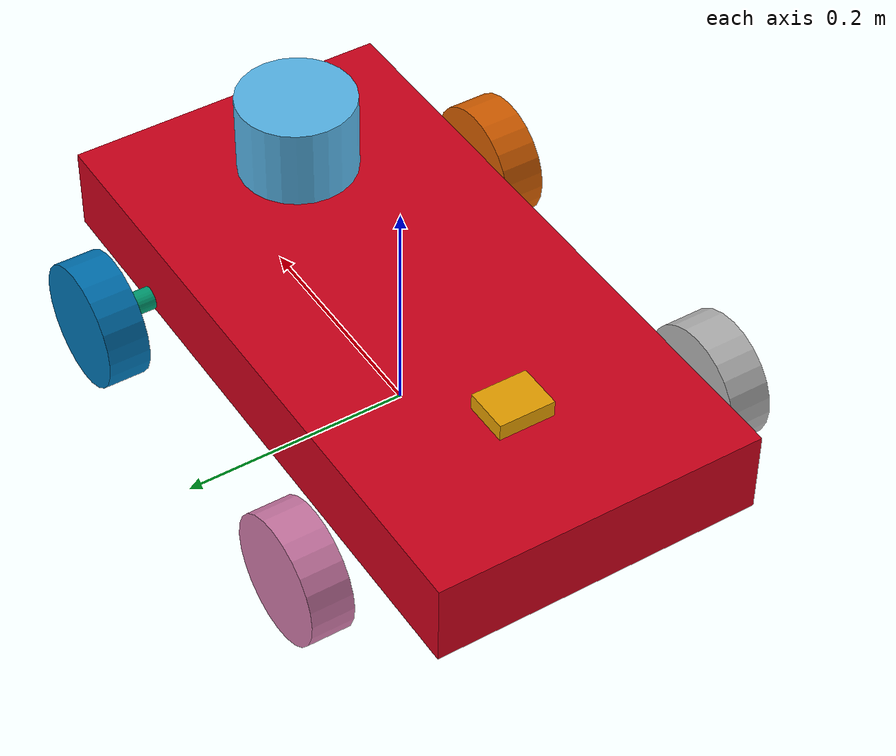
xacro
<?xml version="1.0"?>
<robot name="arc" xmlns:xacro="http://www.ros.org/wiki/xacro">

    <xacro:include filename="$(find ars_description)/urdf/materials.xacro" />
    <xacro:include filename="$(find ars_description)/urdf/properties.xacro"/>
    <xacro:include filename="$(find ars_description)/urdf/macros.xacro"/>
    <xacro:include filename="$(find ars_description)/urdf/parts/chassis.xacro"/>
    <xacro:include filename="$(find ars_description)/urdf/parts/hinge.xacro"/>
    <xacro:include filename="$(find ars_description)/urdf/parts/front_wheel.xacro"/>
    <xacro:include filename="$(find ars_description)/urdf/parts/rear_wheel.xacro"/>
    <xacro:include filename="$(find ars_description)/urdf/sensors/imu.xacro"/>
    <xacro:include filename="$(find ars_description)/urdf/sensors/lidar.xacro"/>
    <xacro:include filename="$(find ars_description)/urdf/ros2_control.xacro"/>

    <xacro:chassis/>

    <xacro:hinge prefix="LEFT"
        X = "${hingeX}"
        Y = "${chassisWidth/2+hingeLength/2}"/>

    <xacro:hinge prefix="RIGHT"
        X = "${hingeX}"
        Y = "${-chassisWidth/2-hingeLength/2}"/>

    <xacro:front_wheel prefix="LEFT"
        X="0"
        Y="${hingeLength/2+wheelWidth/2}"/>

    <xacro:front_wheel prefix="RIGHT"
        X="0"
        Y="${-hingeLength/2-wheelWidth/2}"/>

    <xacro:rear_wheel prefix="LEFT"
        X="${backWheelX}"
        Y="${chassisWidth/2+hingeLength+wheelWidth/2}"/>

    <xacro:rear_wheel prefix="RIGHT"
        X="${backWheelX}"
        Y="${-chassisWidth/2-hingeLength-wheelWidth/2}"/>

    <xacro:IMU base_link="${base_link_name}"/>

    <xacro:LIDAR base_link="${base_link_name}"/>

</robot>

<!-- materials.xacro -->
<robot xmlns:xacro="http://www.ros.org/wiki/xacro">

  <material name="black">
    <color rgba="0.0 0.0 0.0 1.0"/>
  </material>

  <material name="blue">
    <color rgba="0.203125 0.23828125 0.28515625 1.0"/>
  </material>

  <material name="green">
    <color rgba="0.0 0.8 0.0 1.0"/>
  </material>

  <material name="grey">
    <color rgba="0.2 0.2 0.2 1.0"/>
  </material>

  <material name="orange">
    <color rgba="1.0 0.423529411765 0.0392156862745 1.0"/>
  </material>

  <material name="brown">
    <color rgba="0.870588235294 0.811764705882 0.764705882353 1.0"/>
  </material>

  <material name="red">
    <color rgba="0.80078125 0.12890625 0.1328125 1.0"/>
  </material>

  <material name="white">
    <color rgba="1.0 1.0 1.0 1.0"/>
  </material>
</robot>

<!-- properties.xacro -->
<robot xmlns:xacro="http://www.ros.org/wiki/xacro">

    <xacro:property name="base_link_name" value="base_link"/>

    <xacro:property name="PI" value="3.1415926535897931"/>

    <xacro:property name="friction_coeff" value="0.8"/>
    <xacro:property name="transmission_reduction" value="1"/>

    <!-- Chassis properties -->
    <xacro:property name="chassisHeight" value="0.075"/>
    <xacro:property name="chassisLength" value="0.570"/>
    <xacro:property name="chassisWidth" value="0.290"/>
    <xacro:property name="chassisMass" value="2.300"/>

    <!-- Hinge properties -->
    <xacro:property name="hingeMass" value="0.030"/>
    <xacro:property name="hingeRadius" value="0.010"/>
    <xacro:property name="hingeLength" value="0.030"/>
    <xacro:property name="hingeX" value="0.162"/>

    <!-- Wheel properties -->
    <xacro:property name="wheelWidth" value="0.037"/>
    <xacro:property name="wheelRadius" value="0.055"/>
    <xacro:property name="backWheelX" value="-0.162"/>
    <xacro:property name="wheelClearance" value="0.01"/>
    <xacro:property name="wheelHeight" value="0.008"/>
    <xacro:property name="wheelMass" value="0.08"/>

    <!-- LIDAR properties -->
    <xacro:property name="lidar_origin_rpy"		value="0 0 0"/>
    <xacro:property name="lidar_origin_xyz"		value="${hingeX} 0 ${chassisHeight/2.0+0.05}"/>
    <xacro:property name="lidar_height"		value="0.0717"/>
    <xacro:property name="lidar_radius"		value="0.0516"/>
    <xacro:property name="lidar_mass"		value="0.15"/>
    <xacro:property name="lidar_update_rate"		value="20"/>
    <xacro:property name="lidar_topic" 			value="/scan"/>

    <!-- IMU properties -->
    <xacro:property name="imu_origin_rpy"		value="0 0 0"/>
    <xacro:property name="imu_origin_xyz"		value="${backWheelX} 0 ${chassisHeight/2.0+0.005}"/>
    <xacro:property name="imu_mass"		value="0.1"/>
    <xacro:property name="imu_x"		value="0.04"/>
    <xacro:property name="imu_y"		value="0.05"/>
    <xacro:property name="imu_z"		value="0.02"/>
    <xacro:property name="imu_size"		value="${imu_x} ${imu_y} ${imu_z}"/>
    <xacro:property name="imu_update_rate"		value="400"/>
    <xacro:property name="imu_topic" 			value="/imu"/>

</robot>

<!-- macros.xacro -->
<robot xmlns:xacro="http://www.ros.org/wiki/xacro">

    <xacro:macro name="cylinder_inertia" params="m r h">
        <inertia
            ixx="${m*(3*r*r+h*h)/12}"
            ixy="0"
            ixz="0"
            iyy="${m*(3*r*r+h*h)/12}"
            iyz="0"
            izz="${m*r*r/2}"
        />
    </xacro:macro>

    <xacro:macro name="box_inertia" params="m x y z">
        <inertia
            ixx="${m*(y*y+z*z)/12}"
            ixy="0"
            ixz="0"
            iyy="${m*(x*x+z*z)/12}"
            iyz="0"
            izz="${m*(x*x+z*z)/12}"
        />
    </xacro:macro>

    <xacro:macro name="sphere_inertia" params="m r">
        <inertia
            ixx="${2*m*r*r/5}"
            ixy="0"
            ixz="0"
            iyy="${2*m*r*r/5}"
            iyz="0"
            izz="${2*m*r*r/5}"
        />
    </xacro:macro>
</robot>

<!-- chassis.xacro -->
<robot xmlns:xacro="http://www.ros.org/wiki/xacro">

    <xacro:macro name="chassis">

        <link name="base_link"/>

        <link name="chassis">
            <collision>
                <origin xyz="0 0 0" rpy="0 0 0"/>
                <geometry>
                    <box size="${chassisLength} ${chassisWidth} ${chassisHeight}"/>
                </geometry>
            </collision>
            <visual>
                <origin xyz="0 0 0" rpy="0 0 0"/>
                <geometry>
                    <box size="${chassisLength} ${chassisWidth} ${chassisHeight}"/>
                </geometry>
                <material name="base_material">
                    <color rgba="0.8 0.0 0.1 1.0"/>
                </material>
            </visual>
            <inertial>
                <origin xyz="0 0 0" rpy="0 0 0"/>
                <mass value="${chassisMass}"/>
                <xacro:box_inertia
                    m="${chassisMass}"
                    x="${chassisLength}"
                    y="${chassisWidth}"
                    z="${chassisHeight}"
                />
            </inertial>
        </link>

        <!-- Fixed joint to add dummy inertia link -->
        <joint name="chassis_joinz" type="fixed">
            <parent link="base_link"/>
            <child link="chassis"/>
            <origin xyz="0 0 ${wheelRadius - wheelHeight + chassisHeight/2.0}" rpy="0 0 0"/>
        </joint>

    </xacro:macro>

</robot>

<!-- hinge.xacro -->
<robot xmlns:xacro="http://www.ros.org/wiki/xacro">

    <xacro:macro name="hinge" params="prefix X Y">
        <joint name="${prefix}_HINGE_JOINT" type="continuous">
            <parent link="chassis"/>
            <child link="${prefix}_HINGE"/>
            <origin xyz="${X} ${Y} ${wheelHeight - chassisHeight/2.0}" rpy="-${0.5*PI} 0.0 0.0"/>
            <axis xyz="0 -1 0" rpy="0 0 0"/>
        </joint>

        <link name="${prefix}_HINGE">
            <visual>
                <origin xyz="0.0 0.0 0.0" rpy="0.0 0.0 0.0"/>
                <geometry>
                    <cylinder radius="${hingeRadius}" length="${hingeLength}"/>
                </geometry>
            </visual>
            <inertial>
                <origin xyz="0.0 0.0 0.0" rpy="0.0 0.0 0.0"/>
                <mass value="${hingeMass}"/>
                <xacro:cylinder_inertia m="${hingeMass}" r="${hingeRadius}" h="${hingeLength}"/>
            </inertial>
        </link>

    </xacro:macro>

</robot>

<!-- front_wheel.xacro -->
<robot xmlns:xacro="http://www.ros.org/wiki/xacro">

    <xacro:macro name="front_wheel" params="prefix X Y friction_coeff:=0.7 transmission_reduction:=1" >

        <joint name="${prefix}_FRONT_WHEEL_JOINT" type="continuous">
            <parent link="${prefix}_HINGE"/>
            <child link="${prefix}_FRONT_WHEEL"/>
            <origin xyz="0 0 ${Y}" rpy="0 0 0" />
            <axis xyz="0 0 1" rpy="0 0 0" />
            <dynamics damping="0.2"/>
        </joint>

        <link name="${prefix}_FRONT_WHEEL">
            <collision>
                <origin xyz="0 0 0" rpy="0 0 0" />
                <geometry>
                    <sphere radius="${wheelRadius}"/>
                </geometry>
            </collision>
            <visual>
                <origin xyz="0 0 0" rpy="0 0 0" />
                <geometry>
                    <cylinder length="${wheelWidth}" radius="${wheelRadius}"/>
                </geometry>
            </visual>
            <inertial>
                <origin xyz="0 0 0" rpy="0 0 0" />
                <mass value="${wheelMass}"/>
                <xacro:cylinder_inertia m="${wheelMass}" r="${wheelRadius}" h="${wheelWidth}"/>
            </inertial>
        </link>

    </xacro:macro>
</robot>

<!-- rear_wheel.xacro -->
<robot xmlns:xacro="http://www.ros.org/wiki/xacro">

    <xacro:macro name="rear_wheel" params="prefix X Y friction_coeff:=0.7 transmission_reduction:=1" >
        <joint name="${prefix}_REAR_WHEEL_JOINT" type="continuous">
            <parent link="chassis"/>
            <child link="${prefix}_REAR_WHEEL"/>
            <origin xyz="${X} ${Y} ${wheelHeight - chassisHeight/2.0}" rpy="${PI/2} 0 0" />
            <axis xyz="0 0 -1" rpy="0 0 0" />
        </joint>

        <link name="${prefix}_REAR_WHEEL">
            <collision>
                <origin xyz="0 0 0" rpy="0 0 0" />
                <geometry>
                    <sphere radius="${wheelRadius}"/>
                </geometry>
            </collision>
            <visual>
                <origin xyz="0 0 0" rpy="0 0 0" />
                <geometry>
                    <cylinder length="${wheelWidth}" radius="${wheelRadius}"/>
                </geometry>
            </visual>
            <inertial>
                <origin xyz="0 0 0" rpy="0 0 0" />
                <mass value="${wheelMass}"/>
                <xacro:cylinder_inertia m="${wheelMass}" r="${wheelRadius}" h="${wheelWidth}"/>
            </inertial>
        </link>

    </xacro:macro>

</robot>

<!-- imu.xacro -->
<robot name="arc" xmlns:xacro="http://www.ros.org/wiki/xacro">
    <xacro:macro name="IMU" params="base_link">

        <!-- Imu is fixed to the base link -->
        <joint name="imu_joint" type="fixed">
            <origin xyz="${imu_origin_xyz}" rpy="${imu_origin_rpy}"/>
            <parent link="chassis"/>
            <child link="imu_link"/>
        </joint>

        <!-- Imu link -->
        <link name="imu_link">
            <inertial>
                <mass value="${imu_mass}"/>
                <origin rpy="0 0 0" xyz="0 0 0"/>
                <xacro:box_inertia m="${imu_mass}" x="${imu_x}" y="${imu_x}" z="${imu_x}"/>
            </inertial>
            <visual>
                <origin rpy="0 0 0" xyz="0 0 0"/>
                <geometry>
                    <box size="${imu_size}"/>
                </geometry>
            </visual>
            <collision>
                <origin rpy="0 0 0" xyz="0 0 0"/>
                <geometry>
                    <box size="${imu_size}"/>
                </geometry>
            </collision>
        </link>

        <gazebo reference="imu_link">
            <sensor name="imu_sensor" type="imu">
                <always_on>1</always_on>
                <update_rate>${imu_update_rate}</update_rate>
                <ignition_frame_id>imu_link</ignition_frame_id>
                <visualize>true</visualize>
                <topic>${imu_topic}</topic>
            </sensor>
        </gazebo>

    </xacro:macro>
</robot>

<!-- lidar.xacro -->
<robot name="arc" xmlns:xacro="http://www.ros.org/wiki/xacro">
    <xacro:macro name="LIDAR" params="base_link">

        <!-- LIDAR is fixed to base link -->
        <joint name="lidar_joint" type="fixed">
            <origin xyz="${lidar_origin_xyz}" rpy="${lidar_origin_rpy}"/>
            <parent link="chassis"/>
            <child link="lidar_link"/>
        </joint>

        <!-- LIDAR link -->
        <link name="lidar_link">
            <inertial>
                <mass value="${lidar_mass}"/>
                <origin xyz="0 0 0"/>
                <xacro:cylinder_inertia m="${lidar_mass}" r="${lidar_radius}" h="${lidar_height}"/>
            </inertial>
            <visual>
                <origin rpy="0 0 0" xyz="0 0 0"/>
                <geometry>
                    <cylinder radius="${lidar_radius}" length="${lidar_height}"/>
                </geometry>
            </visual>
            <collision>
                <origin rpy="0 0 0" xyz="0 0 0"/>
                <geometry>
                    <cylinder radius="${lidar_radius}" length="${lidar_height}"/>
                </geometry>
            </collision>
        </link>

        <gazebo reference="lidar_link">
            <sensor name='gpu_lidar' type='gpu_lidar'>
                <topic>${lidar_topic}</topic>
                <update_rate>${lidar_update_rate}</update_rate>
                <alwaysOn>1</alwaysOn>
                <visualize>true</visualize>
                <ignition_frame_id>lidar_link</ignition_frame_id>
                <lidar>
                    <scan>
                        <horizontal>
                            <samples>640</samples>
                            <resolution>1</resolution>
                            <min_angle>-1.396263</min_angle>
                            <max_angle>1.396263</max_angle>
                        </horizontal>
                        <vertical>
                        <samples>1</samples>
                        <resolution>1</resolution>
                        <min_angle>0.0</min_angle>
                        <max_angle>0.0</max_angle>
                        </vertical>
                    </scan>
                    <range>
                        <min>0.08</min>
                        <max>10</max>
                        <resolution>0.01</resolution>
                    </range>
                    <noise>
                        <type>gaussian</type>
                        <mean>0.0</mean>
                        <stddev>0.001</stddev>
                    </noise>
                </lidar>
            </sensor>
        </gazebo>

    </xacro:macro>
</robot>
